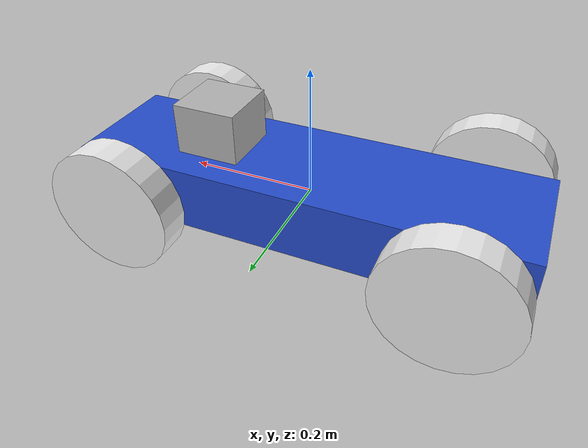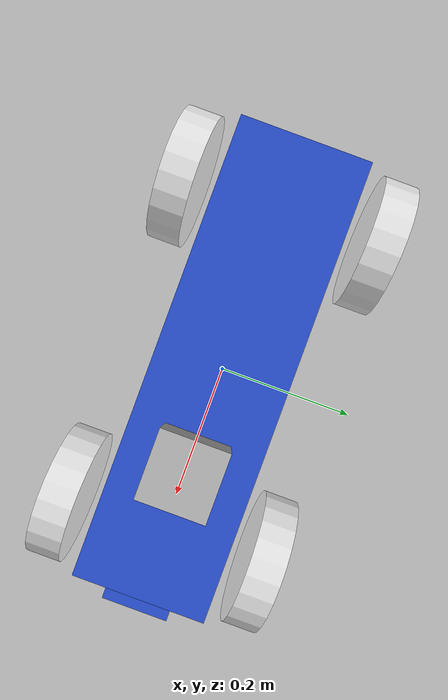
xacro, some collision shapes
<?xml version='1.0'?>

<robot name="my_robot" xmlns:xacro="http://www.ros.org/wiki/xacro">
<xacro:include filename="$(find my_robot)/urdf/my_robot.gazebo" />

  <link name="robot_footprint"></link>

  <gazebo reference="chassis">
    <material>Gazebo/Blue</material>
  </gazebo>

  <gazebo reference="left_wheel">
    <material>Gazebo/White</material>
  </gazebo>

  <gazebo reference="right_wheel">
    <material>Gazebo/White</material>
  </gazebo>

  <gazebo reference="left2_wheel">
    <material>Gazebo/White</material>
  </gazebo>

  <gazebo reference="right2_wheel">
    <material>Gazebo/White</material>
  </gazebo>

  <gazebo reference="camera">
    <material>Gazebo/Blue</material>
  </gazebo>

  <joint name="robot_footprint_joint" type="fixed">
    <origin xyz="0 0 0" rpy="0 0 0" />
    <parent link="robot_footprint"/>
    <child link="chassis" />
  </joint>

  <link name='chassis'>
    <pose>0 0 0.1 0 0 0</pose>

    <inertial>
      <mass value="15.0"/>
      <origin xyz="0.0 0 0" rpy=" 0 0 0"/>
      <inertia
          ixx="0.1" ixy="0" ixz="0"
          iyy="0.1" iyz="0"
          izz="0.1"
      />
    </inertial>

    <collision name='collision'>
      <origin xyz="0 0 0" rpy=" 0 0 0"/>
      <geometry>
        <box size="0.7 .2 .1"/>
      </geometry>
    </collision>

    <visual name='chassis_visual'>
      <origin xyz="0 0 0" rpy=" 0 0 0"/>
      <geometry>
        <box size="0.7 .2 .1"/>
      </geometry>
    </visual>

    <collision name='back_caster_collision'>
      <origin xyz="-0.25 0 -0.05" rpy=" 0 0 0"/>
      <geometry>
        <sphere radius="0.0499"/>
      </geometry>
    </collision>

    <visual name='back_caster_visual'>
      <origin xyz="-0.25 0 -0.05" rpy=" 0 0 0"/>
      <geometry>
        <sphere radius="0.05"/>
      </geometry>
    </visual>

    <collision name='middle_caster_collision'>
      <origin xyz="0 0 -0.05" rpy=" 0 0 0"/>
      <geometry>
        <sphere radius="0.0499"/>
      </geometry>
    </collision>

    <visual name='back_caster_visual'>
      <origin xyz="0 0 -0.05" rpy=" 0 0 0"/>
      <geometry>
        <sphere radius="0.05"/>
      </geometry>
    </visual>

    <collision name='front_caster_collision'>
      <origin xyz="0.25 0 -0.05" rpy=" 0 0 0"/>
      <geometry>
        <sphere radius="0.0499"/>
      </geometry>
    </collision>

    <visual name='front_caster_visual'>
      <origin xyz="0.25 0 -0.05" rpy=" 0 0 0"/>
      <geometry>
        <sphere radius="0.05"/>
      </geometry>
    </visual>
  </link>

  <joint type="continuous" name="left_wheel_hinge">
    <origin xyz="0.25 0.15 0" rpy="0 0 0"/>
    <child link="left_wheel"/>
    <parent link="chassis"/>
    <axis xyz="0 1 0" rpy="0 0 0"/>
    <limit effort="10000" velocity="1000"/>
    <dynamics damping="1.0" friction="1.0"/>
  </joint>

  <link name='left_wheel'>
    <inertial>
      <mass value="5.0"/>
      <origin xyz="0.0 0 0" rpy=" 0 1.5707 1.5707"/>
      <inertia
          ixx="0.1" ixy="0" ixz="0"
          iyy="0.1" iyz="0"
          izz="0.1"
      />
    </inertial>

    <collision name='left_wheel_collision'>
      <origin xyz="0 0 0" rpy=" 0 1.5707 1.5707"/>
      <geometry>
        <cylinder length="0.05" radius="0.1"/>
      </geometry>
    </collision>

    <visual name='left_wheel_visual'>
      <origin xyz="0 0 0" rpy=" 0 1.5705 1.5707"/>
      <geometry>
        <cylinder length="0.05" radius="0.1"/>
      </geometry>
    </visual>
  </link>

  <joint type="continuous" name="left2_wheel_hinge">
    <origin xyz="-0.25 0.15 0" rpy="0 0 0"/>
    <child link="left2_wheel"/>
    <parent link="chassis"/>
    <axis xyz="0 1 0" rpy="0 0 0"/>
    <limit effort="10000" velocity="1000"/>
    <dynamics damping="1.0" friction="1.0"/>
  </joint>

  <link name='left2_wheel'>
    <inertial>
      <mass value="5.0"/>
      <origin xyz="0.0 0 0" rpy=" 0 1.5707 1.5707"/>
      <inertia
          ixx="0.1" ixy="0" ixz="0"
          iyy="0.1" iyz="0"
          izz="0.1"
      />
    </inertial>

    <collision name='left2_wheel_collision'>
      <origin xyz="0 0 0" rpy=" 0 1.5707 1.5707"/>
      <geometry>
        <cylinder length="0.05" radius="0.1"/>
      </geometry>
    </collision>

    <visual name='left2_wheel_visual'>
      <origin xyz="0 0 0" rpy=" 0 1.5705 1.5707"/>
      <geometry>
        <cylinder length="0.05" radius="0.1"/>
      </geometry>
    </visual>
  </link>

  <joint type="continuous" name="right_wheel_hinge">
    <origin xyz="0.25 -0.15 0" rpy="0 0 0"/>
    <child link="right_wheel"/>
    <parent link="chassis"/>
    <axis xyz="0 1 0" rpy="0 0 0"/>
    <limit effort="10000" velocity="1000"/>
    <dynamics damping="1.0" friction="1.0"/>
  </joint>

  <link name='right_wheel'>
    <inertial>
      <mass value="5.0"/>
      <origin xyz="0.0 0 0" rpy=" 0 1.5707 1.5707"/>
      <inertia
          ixx="0.1" ixy="0" ixz="0"
          iyy="0.1" iyz="0"
          izz="0.1"
      />
    </inertial>

    <collision name='right_wheel_collision'>
      <origin xyz="0 0 0" rpy=" 0 1.5707 1.5707"/>
      <geometry>
        <cylinder length="0.05" radius="0.1"/>
      </geometry>
    </collision>

    <visual name='right_wheel_visual'>
      <origin xyz="0 0 0" rpy=" 0 1.5705 1.5707"/>
      <geometry>
        <cylinder length="0.05" radius="0.1"/>
      </geometry>
    </visual>
  </link>

  <joint type="continuous" name="right2_wheel_hinge">
    <origin xyz="-0.25 -0.15 0" rpy="0 0 0"/>
    <child link="right2_wheel"/>
    <parent link="chassis"/>
    <axis xyz="0 1 0" rpy="0 0 0"/>
    <limit effort="10000" velocity="1000"/>
    <dynamics damping="1.0" friction="1.0"/>
  </joint>

  <link name='right2_wheel'>
    <inertial>
      <mass value="5.0"/>
      <origin xyz="0.0 0 0" rpy=" 0 1.5707 1.5707"/>
      <inertia
          ixx="0.1" ixy="0" ixz="0"
          iyy="0.1" iyz="0"
          izz="0.1"
      />
    </inertial>

    <collision name='right2_wheel_collision'>
      <origin xyz="0 0 0" rpy=" 0 1.5707 1.5707"/>
      <geometry>
        <cylinder length="0.05" radius="0.1"/>
      </geometry>
    </collision>

    <visual name='right2_wheel_visual'>
      <origin xyz="0 0 0" rpy=" 0 1.5705 1.5707"/>
      <geometry>
        <cylinder length="0.05" radius="0.1"/>
      </geometry>
    </visual>
  </link>

  <joint type="fixed" name="camera_joint">
    <origin xyz="0.35 0 0" rpy="0 0 0"/>
    <child link="camera"/>
    <parent link="chassis"/>
    <axis xyz="0 1 0" rpy="0 0 0"/>
  </joint>

  <link name="camera">
    <inertial>
      <mass value="0.1"/>
      <origin xyz="0 0 0" rpy="0 0 0"/>
      <inertia
          ixx="1e-6" ixy="0" ixz="0"
          iyy="1e-6" iyz="0"
          izz="1e-6"
      />
    </inertial>

    <collision name='camera_collision'>
      <origin xyz="0 0 0" rpy=" 0 0 0"/>
      <geometry>
        <box size="0.05 0.1 0.05"/>
      </geometry>
    </collision>

    <visual name='camera_visual'>
      <origin xyz="0 0 0" rpy=" 0 0 0"/>
      <geometry>
        <box size="0.05 0.1 0.05"/>
      </geometry>
    </visual>
  </link>

  <joint type="fixed" name="hokuyo_joint">
    <origin xyz="0.15 0 0.08" rpy="0 0 0"/>
    <child link="hokuyo"/>
    <parent link="chassis"/>
    <axis xyz="0 1 0" rpy="0 0 0"/>
  </joint>

  <link name="hokuyo">
    <inertial>
      <mass value="1e-5"/>
      <origin xyz="0 0 0" rpy="0 0 0"/>
      <inertia
          ixx="1e-6" ixy="0" ixz="0"
          iyy="1e-6" iyz="0"
          izz="1e-6"
      />
    </inertial>

    <collision name='hokuyo_collision'>
      <origin xyz="0 0 0" rpy=" 0 0 0"/>
      <geometry>
        <box size="0.1 0.1 0.1"/>
      </geometry>
    </collision>

    <visual name='hokuyo_visual'>
      <origin xyz="0 0 0" rpy=" 0 0 0"/>
      <geometry>
        <mesh filename="package://my_robot/meshes/hokuyo.dae"/>
      </geometry>
    </visual>
  </link>

</robot>
